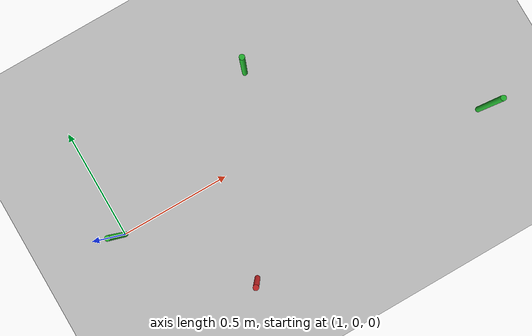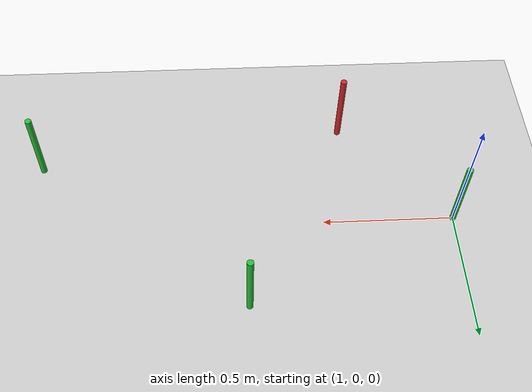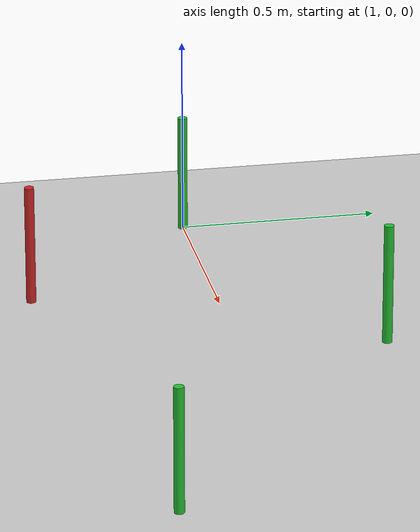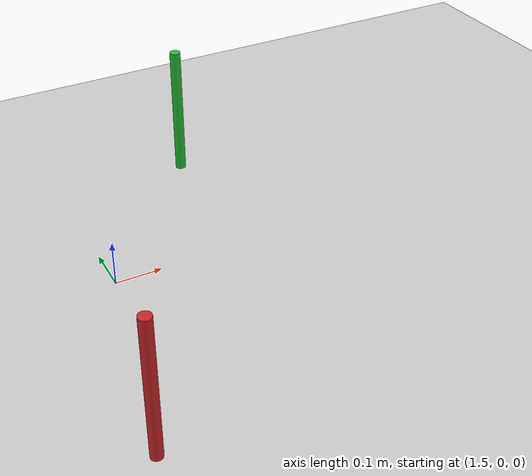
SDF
<?xml version="1.0" ?>
<sdf version="1.6">
  <world name="hexapod_world">

    <include><uri>model://sun</uri></include>

    <include><uri>model://ground_plane</uri></include>

    <physics name="default_physics" default="true" type="ode">

      <max_step_size>0.001</max_step_size>

      <real_time_update_rate>1000</real_time_update_rate>
      <real_time_factor>1.0</real_time_factor>

      <ode>
        <solver>
          <!-- "quick" is ODE's iterative projected Gauss-Seidel solver.
               "world" is the direct solver: exact, but O(n^3) and far too
               slow for 25 bodies. Every legged robot uses quick. -->
          <type>quick</type>

          <iters>100</iters>

          <!-- sor: successive over-relaxation factor. Values above 1
               accelerate convergence but can overshoot. 1.3 is the standard
               compromise and rarely needs changing. -->
          <sor>1.3</sor>
        </solver>

        <constraints>
          <cfm>0.0</cfm>

          <erp>0.2</erp>

          <contact_max_correcting_vel>100.0</contact_max_correcting_vel>

          <contact_surface_layer>0.001</contact_surface_layer>
        </constraints>
      </ode>

    </physics>

    <gravity>0 0 -9.81</gravity>

    <!-- Camera placed to look at a robot spawned near the origin. -->
    <gui fullscreen="0">
      <camera name="user_camera">
        <pose>1.2 -1.2 0.9 0 0.35 2.35</pose>
      </camera>
    </gui>

    <model name="crop_row">
      <static>true</static>
      <link name="stems">

        <visual name="stem_a">
          <pose>1.00 0.00 0.15 0 0 0</pose>
          <geometry><cylinder><radius>0.012</radius><length>0.30</length></cylinder></geometry>
          <material>
            <ambient>0.10 0.55 0.15 1</ambient>
            <diffuse>0.15 0.75 0.20 1</diffuse>
          </material>
        </visual>

        <visual name="stem_b">
          <pose>1.80 0.35 0.15 0 0 0</pose>
          <geometry><cylinder><radius>0.012</radius><length>0.30</length></cylinder></geometry>
          <material>
            <ambient>0.10 0.55 0.15 1</ambient>
            <diffuse>0.15 0.75 0.20 1</diffuse>
          </material>
        </visual>

        <visual name="stem_c">
          <pose>2.60 -0.30 0.15 0 0 0</pose>
          <geometry><cylinder><radius>0.012</radius><length>0.30</length></cylinder></geometry>
          <material>
            <ambient>0.10 0.55 0.15 1</ambient>
            <diffuse>0.15 0.75 0.20 1</diffuse>
          </material>
        </visual>

        <visual name="stem_decoy">
          <pose>1.40 -0.45 0.15 0 0 0</pose>
          <geometry><cylinder><radius>0.012</radius><length>0.30</length></cylinder></geometry>
          <material>
            <ambient>0.55 0.10 0.10 1</ambient>
            <diffuse>0.80 0.15 0.15 1</diffuse>
          </material>
        </visual>

      </link>
    </model>

    <plugin name="gazebo_ros_state" filename="libgazebo_ros_state.so">
      <ros>
        <namespace>/</namespace>
      </ros>
      <update_rate>50.0</update_rate>
    </plugin>

  </world>
</sdf>
